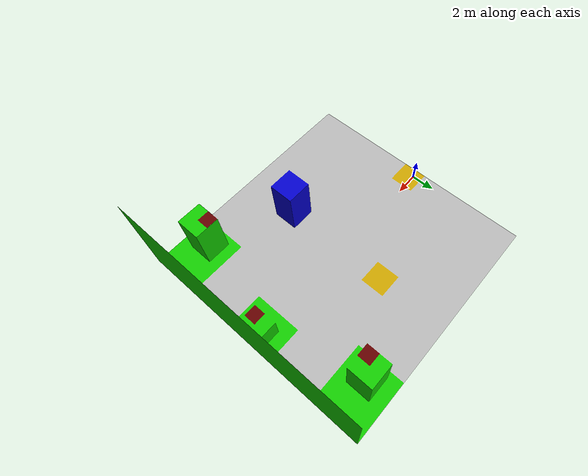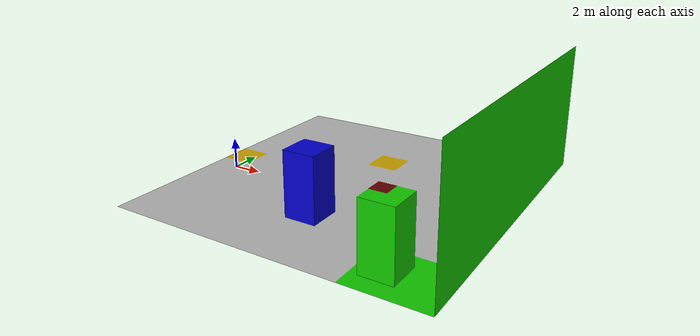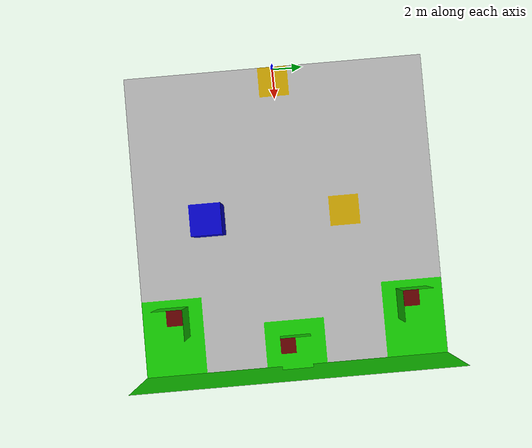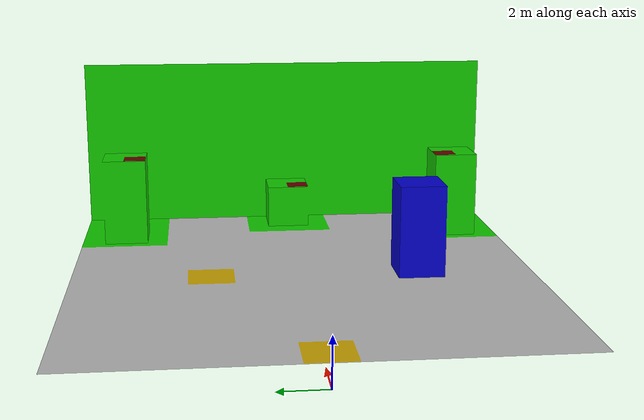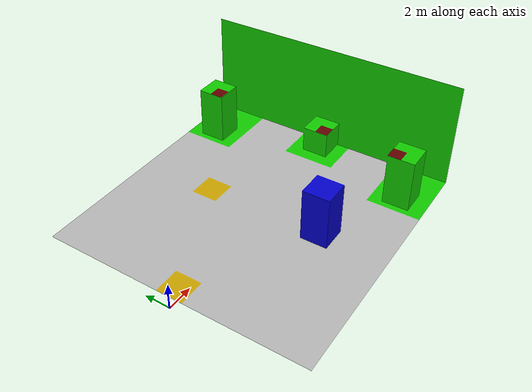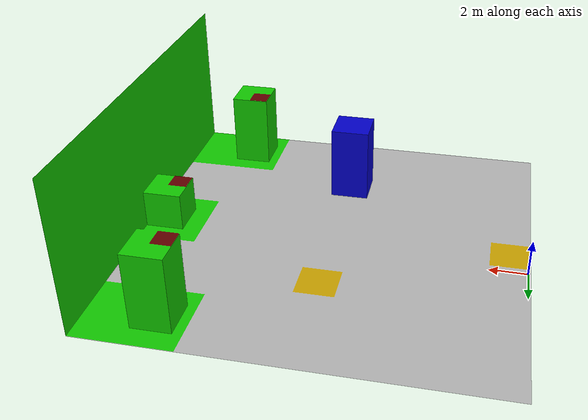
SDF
<?xml version="1.0" ?>
<sdf version="1.6">
  <model name="Arena_KRTI_2021">
    <pose>0 0 1 0 0 0</pose>
    <static>true</static>
    <link name="link">
      <collision name="collision">
        <geometry>
          <mesh>
            <uri>model://ArenaKRTI/meshes/Arena_KRTI_2021.dae</uri>
          </mesh>
        </geometry>
      </collision>

      <visual name="visual">
        <geometry>
          <mesh>
            <uri>model://ArenaKRTI/meshes/Arena_KRTI_2021.dae</uri>
          </mesh>
        </geometry>
      </visual>
    </link>
  </model>
</sdf>
